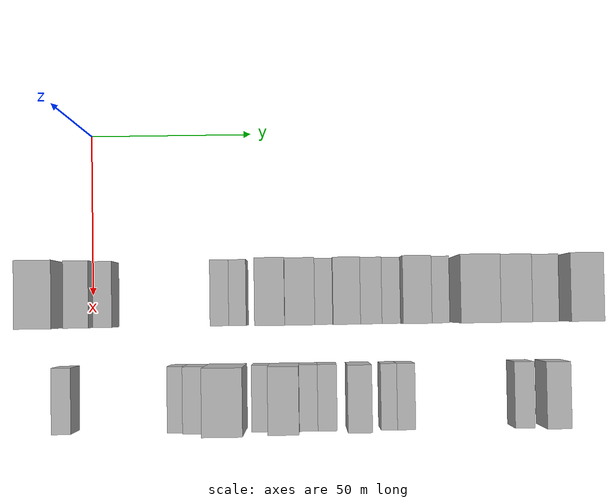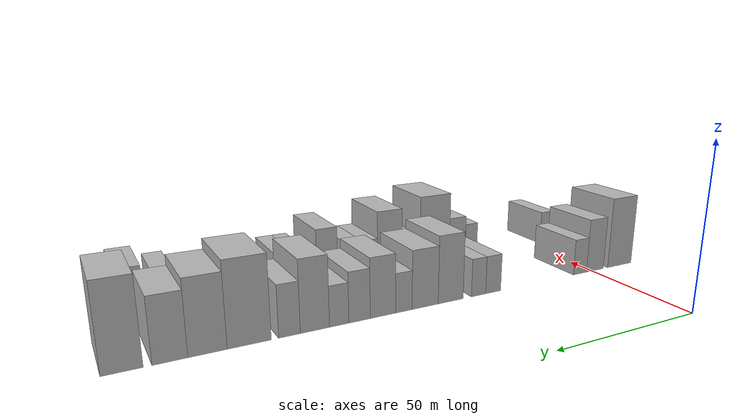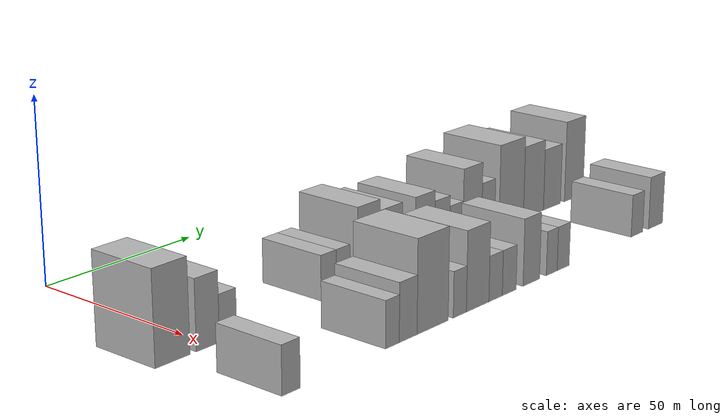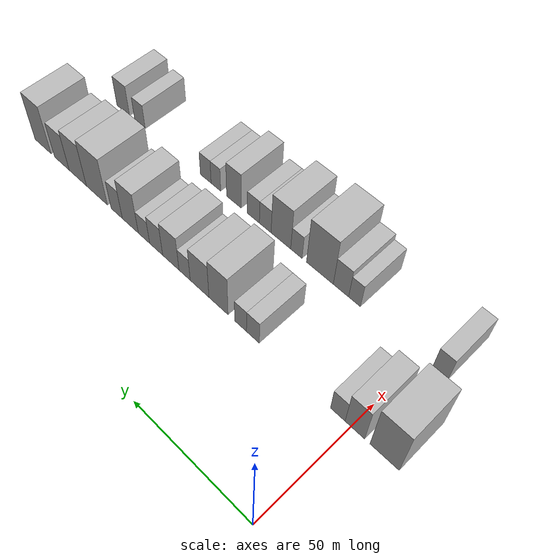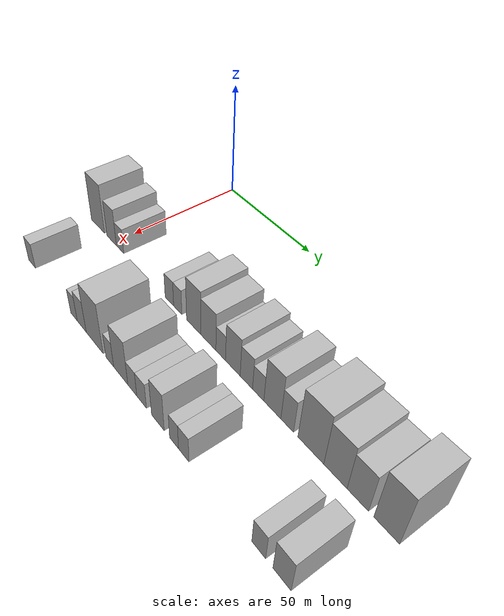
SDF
<sdf version="1.6">
 <world name="default">
  <model name="building_32">
   <static>1</static>
   <pose>50.0000 -12.5680 0 0.000000 0.000000 0.000000</pose>
   <link name="link">
    <pose>0 0 12.00 0 0 0</pose>
    <collision name="collision"><geometry><box><size>20.0000 10.8629 24.0000</size></box></geometry></collision>
    <visual name="visual">
     <cast_shadows>0</cast_shadows>
     <geometry><box><size>20.0000 10.8629 24.0000</size></box></geometry>
     <material>
      <script>
       <uri>model://HANNAS_wall/materials/scripts</uri>
       <uri>model://HANNAS_wall/materials/textures</uri>
       <name>vrc/HANNAS_wall</name>
      </script>
     </material>
    </visual>
   </link>
  </model>
  <model name="building_33">
   <static>1</static>
   <pose>50.0000 -1.3900 0 0.000000 0.000000 0.000000</pose>
   <link name="link">
    <pose>0 0 9.00 0 0 0</pose>
    <collision name="collision"><geometry><box><size>20.0000 7.4931 18.0000</size></box></geometry></collision>
    <visual name="visual">
     <cast_shadows>0</cast_shadows>
     <geometry><box><size>20.0000 7.4931 18.0000</size></box></geometry>
     <material>
      <script>
       <uri>model://HANNAS_wall/materials/scripts</uri>
       <uri>model://HANNAS_wall/materials/textures</uri>
       <name>vrc/HANNAS_wall</name>
      </script>
     </material>
    </visual>
   </link>
  </model>
  <model name="building_34">
   <static>1</static>
   <pose>50.0000 5.2241 0 0.000000 0.000000 0.000000</pose>
   <link name="link">
    <pose>0 0 6.00 0 0 0</pose>
    <collision name="collision"><geometry><box><size>20.0000 5.7352 12.0000</size></box></geometry></collision>
    <visual name="visual">
     <cast_shadows>0</cast_shadows>
     <geometry><box><size>20.0000 5.7352 12.0000</size></box></geometry>
     <material>
      <script>
       <uri>model://HANNAS_wall/materials/scripts</uri>
       <uri>model://HANNAS_wall/materials/textures</uri>
       <name>vrc/HANNAS_wall</name>
      </script>
     </material>
    </visual>
   </link>
  </model>
  <model name="building_35">
   <static>1</static>
   <pose>50.0000 40.5400 0 0.000000 0.000000 0.000000</pose>
   <link name="link">
    <pose>0 0 6.00 0 0 0</pose>
    <collision name="collision"><geometry><box><size>20.0000 5.6322 12.0000</size></box></geometry></collision>
    <visual name="visual">
     <cast_shadows>0</cast_shadows>
     <geometry><box><size>20.0000 5.6322 12.0000</size></box></geometry>
     <material>
      <script>
       <uri>model://HANNAS_wall/materials/scripts</uri>
       <uri>model://HANNAS_wall/materials/textures</uri>
       <name>vrc/HANNAS_wall</name>
      </script>
     </material>
    </visual>
   </link>
  </model>
  <model name="building_36">
   <static>1</static>
   <pose>50.0000 45.9921 0 0.000000 0.000000 0.000000</pose>
   <link name="link">
    <pose>0 0 6.00 0 0 0</pose>
    <collision name="collision"><geometry><box><size>20.0000 5.2721 12.0000</size></box></geometry></collision>
    <visual name="visual">
     <cast_shadows>0</cast_shadows>
     <geometry><box><size>20.0000 5.2721 12.0000</size></box></geometry>
     <material>
      <script>
       <uri>model://HANNAS_wall/materials/scripts</uri>
       <uri>model://HANNAS_wall/materials/textures</uri>
       <name>vrc/HANNAS_wall</name>
      </script>
     </material>
    </visual>
   </link>
  </model>
  <model name="building_37">
   <static>1</static>
   <pose>50.0000 56.0227 0 0.000000 0.000000 0.000000</pose>
   <link name="link">
    <pose>0 0 10.50 0 0 0</pose>
    <collision name="collision"><geometry><box><size>20.0000 8.7891 21.0000</size></box></geometry></collision>
    <visual name="visual">
     <cast_shadows>0</cast_shadows>
     <geometry><box><size>20.0000 8.7891 21.0000</size></box></geometry>
     <material>
      <script>
       <uri>model://HANNAS_wall/materials/scripts</uri>
       <uri>model://HANNAS_wall/materials/textures</uri>
       <name>vrc/HANNAS_wall</name>
      </script>
     </material>
    </visual>
   </link>
  </model>
  <model name="building_38">
   <static>1</static>
   <pose>50.0000 64.8491 0 0.000000 0.000000 0.000000</pose>
   <link name="link">
    <pose>0 0 9.00 0 0 0</pose>
    <collision name="collision"><geometry><box><size>20.0000 8.8636 18.0000</size></box></geometry></collision>
    <visual name="visual">
     <cast_shadows>0</cast_shadows>
     <geometry><box><size>20.0000 8.8636 18.0000</size></box></geometry>
     <material>
      <script>
       <uri>model://HANNAS_wall/materials/scripts</uri>
       <uri>model://HANNAS_wall/materials/textures</uri>
       <name>vrc/HANNAS_wall</name>
      </script>
     </material>
    </visual>
   </link>
  </model>
  <model name="building_39">
   <static>1</static>
   <pose>50.0000 71.9994 0 0.000000 0.000000 0.000000</pose>
   <link name="link">
    <pose>0 0 6.00 0 0 0</pose>
    <collision name="collision"><geometry><box><size>20.0000 5.4370 12.0000</size></box></geometry></collision>
    <visual name="visual">
     <cast_shadows>0</cast_shadows>
     <geometry><box><size>20.0000 5.4370 12.0000</size></box></geometry>
     <material>
      <script>
       <uri>model://HANNAS_wall/materials/scripts</uri>
       <uri>model://HANNAS_wall/materials/textures</uri>
       <name>vrc/HANNAS_wall</name>
      </script>
     </material>
    </visual>
   </link>
  </model>
  <model name="building_40">
   <static>1</static>
   <pose>50.0000 78.7575 0 0.000000 0.000000 0.000000</pose>
   <link name="link">
    <pose>0 0 9.00 0 0 0</pose>
    <collision name="collision"><geometry><box><size>20.0000 8.0791 18.0000</size></box></geometry></collision>
    <visual name="visual">
     <cast_shadows>0</cast_shadows>
     <geometry><box><size>20.0000 8.0791 18.0000</size></box></geometry>
     <material>
      <script>
       <uri>model://HANNAS_wall/materials/scripts</uri>
       <uri>model://HANNAS_wall/materials/textures</uri>
       <name>vrc/HANNAS_wall</name>
      </script>
     </material>
    </visual>
   </link>
  </model>
  <model name="building_41">
   <static>1</static>
   <pose>50.0000 86.0763 0 0.000000 0.000000 0.000000</pose>
   <link name="link">
    <pose>0 0 7.50 0 0 0</pose>
    <collision name="collision"><geometry><box><size>20.0000 6.5585 15.0000</size></box></geometry></collision>
    <visual name="visual">
     <cast_shadows>0</cast_shadows>
     <geometry><box><size>20.0000 6.5585 15.0000</size></box></geometry>
     <material>
      <script>
       <uri>model://HANNAS_wall/materials/scripts</uri>
       <uri>model://HANNAS_wall/materials/textures</uri>
       <name>vrc/HANNAS_wall</name>
      </script>
     </material>
    </visual>
   </link>
  </model>
  <model name="building_42">
   <static>1</static>
   <pose>50.0000 92.2538 0 0.000000 0.000000 0.000000</pose>
   <link name="link">
    <pose>0 0 6.00 0 0 0</pose>
    <collision name="collision"><geometry><box><size>20.0000 5.7967 12.0000</size></box></geometry></collision>
    <visual name="visual">
     <cast_shadows>0</cast_shadows>
     <geometry><box><size>20.0000 5.7967 12.0000</size></box></geometry>
     <material>
      <script>
       <uri>model://HANNAS_wall/materials/scripts</uri>
       <uri>model://HANNAS_wall/materials/textures</uri>
       <name>vrc/HANNAS_wall</name>
      </script>
     </material>
    </visual>
   </link>
  </model>
  <model name="building_43">
   <static>1</static>
   <pose>50.0000 99.3555 0 0.000000 0.000000 0.000000</pose>
   <link name="link">
    <pose>0 0 10.50 0 0 0</pose>
    <collision name="collision"><geometry><box><size>20.0000 8.4067 21.0000</size></box></geometry></collision>
    <visual name="visual">
     <cast_shadows>0</cast_shadows>
     <geometry><box><size>20.0000 8.4067 21.0000</size></box></geometry>
     <material>
      <script>
       <uri>model://HANNAS_wall/materials/scripts</uri>
       <uri>model://HANNAS_wall/materials/textures</uri>
       <name>vrc/HANNAS_wall</name>
      </script>
     </material>
    </visual>
   </link>
  </model>
  <model name="building_44">
   <static>1</static>
   <pose>50.0000 106.5774 0 0.000000 0.000000 0.000000</pose>
   <link name="link">
    <pose>0 0 7.50 0 0 0</pose>
    <collision name="collision"><geometry><box><size>20.0000 6.0372 15.0000</size></box></geometry></collision>
    <visual name="visual">
     <cast_shadows>0</cast_shadows>
     <geometry><box><size>20.0000 6.0372 15.0000</size></box></geometry>
     <material>
      <script>
       <uri>model://HANNAS_wall/materials/scripts</uri>
       <uri>model://HANNAS_wall/materials/textures</uri>
       <name>vrc/HANNAS_wall</name>
      </script>
     </material>
    </visual>
   </link>
  </model>
  <model name="building_45">
   <static>1</static>
   <pose>50.0000 117.4008 0 0.000000 0.000000 0.000000</pose>
   <link name="link">
    <pose>0 0 12.00 0 0 0</pose>
    <collision name="collision"><geometry><box><size>20.0000 11.6096 24.0000</size></box></geometry></collision>
    <visual name="visual">
     <cast_shadows>0</cast_shadows>
     <geometry><box><size>20.0000 11.6096 24.0000</size></box></geometry>
     <material>
      <script>
       <uri>model://HANNAS_wall/materials/scripts</uri>
       <uri>model://HANNAS_wall/materials/textures</uri>
       <name>vrc/HANNAS_wall</name>
      </script>
     </material>
    </visual>
   </link>
  </model>
  <model name="building_46">
   <static>1</static>
   <pose>50.0000 128.1020 0 0.000000 0.000000 0.000000</pose>
   <link name="link">
    <pose>0 0 10.50 0 0 0</pose>
    <collision name="collision"><geometry><box><size>20.0000 9.7929 21.0000</size></box></geometry></collision>
    <visual name="visual">
     <cast_shadows>0</cast_shadows>
     <geometry><box><size>20.0000 9.7929 21.0000</size></box></geometry>
     <material>
      <script>
       <uri>model://HANNAS_wall/materials/scripts</uri>
       <uri>model://HANNAS_wall/materials/textures</uri>
       <name>vrc/HANNAS_wall</name>
      </script>
     </material>
    </visual>
   </link>
  </model>
  <model name="building_47">
   <static>1</static>
   <pose>50.0000 137.2708 0 0.000000 0.000000 0.000000</pose>
   <link name="link">
    <pose>0 0 9.00 0 0 0</pose>
    <collision name="collision"><geometry><box><size>20.0000 8.5446 18.0000</size></box></geometry></collision>
    <visual name="visual">
     <cast_shadows>0</cast_shadows>
     <geometry><box><size>20.0000 8.5446 18.0000</size></box></geometry>
     <material>
      <script>
       <uri>model://HANNAS_wall/materials/scripts</uri>
       <uri>model://HANNAS_wall/materials/textures</uri>
       <name>vrc/HANNAS_wall</name>
      </script>
     </material>
    </visual>
   </link>
  </model>
  <model name="building_48">
   <static>1</static>
   <pose>50.0000 148.3784 0 0.000000 0.000000 0.000000</pose>
   <link name="link">
    <pose>0 0 12.00 0 0 0</pose>
    <collision name="collision"><geometry><box><size>20.0000 9.6707 24.0000</size></box></geometry></collision>
    <visual name="visual">
     <cast_shadows>0</cast_shadows>
     <geometry><box><size>20.0000 9.6707 24.0000</size></box></geometry>
     <material>
      <script>
       <uri>model://HANNAS_wall/materials/scripts</uri>
       <uri>model://HANNAS_wall/materials/textures</uri>
       <name>vrc/HANNAS_wall</name>
      </script>
     </material>
    </visual>
   </link>
  </model>
  <model name="building_92">
   <static>1</static>
   <pose>82.0000 -7.4349 0 0.000000 0.000000 0.000000</pose>
   <link name="link">
    <pose>0 0 6.00 0 0 0</pose>
    <collision name="collision"><geometry><box><size>20.0000 5.8910 12.0000</size></box></geometry></collision>
    <visual name="visual">
     <cast_shadows>0</cast_shadows>
     <geometry><box><size>20.0000 5.8910 12.0000</size></box></geometry>
     <material>
      <script>
       <uri>model://HANNAS_wall/materials/scripts</uri>
       <uri>model://HANNAS_wall/materials/textures</uri>
       <name>vrc/HANNAS_wall</name>
      </script>
     </material>
    </visual>
   </link>
  </model>
  <model name="building_93">
   <static>1</static>
   <pose>82.0000 27.0017 0 0.000000 0.000000 0.000000</pose>
   <link name="link">
    <pose>0 0 6.00 0 0 0</pose>
    <collision name="collision"><geometry><box><size>20.0000 4.9941 12.0000</size></box></geometry></collision>
    <visual name="visual">
     <cast_shadows>0</cast_shadows>
     <geometry><box><size>20.0000 4.9941 12.0000</size></box></geometry>
     <material>
      <script>
       <uri>model://HANNAS_wall/materials/scripts</uri>
       <uri>model://HANNAS_wall/materials/textures</uri>
       <name>vrc/HANNAS_wall</name>
      </script>
     </material>
    </visual>
   </link>
  </model>
  <model name="building_94">
   <static>1</static>
   <pose>82.0000 32.7926 0 0.000000 0.000000 0.000000</pose>
   <link name="link">
    <pose>0 0 7.50 0 0 0</pose>
    <collision name="collision"><geometry><box><size>20.0000 6.5878 15.0000</size></box></geometry></collision>
    <visual name="visual">
     <cast_shadows>0</cast_shadows>
     <geometry><box><size>20.0000 6.5878 15.0000</size></box></geometry>
     <material>
      <script>
       <uri>model://HANNAS_wall/materials/scripts</uri>
       <uri>model://HANNAS_wall/materials/textures</uri>
       <name>vrc/HANNAS_wall</name>
      </script>
     </material>
    </visual>
   </link>
  </model>
  <model name="building_95">
   <static>1</static>
   <pose>82.0000 42.0146 0 0.000000 0.000000 0.000000</pose>
   <link name="link">
    <pose>0 0 12.00 0 0 0</pose>
    <collision name="collision"><geometry><box><size>20.0000 11.8562 24.0000</size></box></geometry></collision>
    <visual name="visual">
     <cast_shadows>0</cast_shadows>
     <geometry><box><size>20.0000 11.8562 24.0000</size></box></geometry>
     <material>
      <script>
       <uri>model://HANNAS_wall/materials/scripts</uri>
       <uri>model://HANNAS_wall/materials/textures</uri>
       <name>vrc/HANNAS_wall</name>
      </script>
     </material>
    </visual>
   </link>
  </model>
  <model name="building_96">
   <static>1</static>
   <pose>82.0000 52.5281 0 0.000000 0.000000 0.000000</pose>
   <link name="link">
    <pose>0 0 6.00 0 0 0</pose>
    <collision name="collision"><geometry><box><size>20.0000 5.1706 12.0000</size></box></geometry></collision>
    <visual name="visual">
     <cast_shadows>0</cast_shadows>
     <geometry><box><size>20.0000 5.1706 12.0000</size></box></geometry>
     <material>
      <script>
       <uri>model://HANNAS_wall/materials/scripts</uri>
       <uri>model://HANNAS_wall/materials/textures</uri>
       <name>vrc/HANNAS_wall</name>
      </script>
     </material>
    </visual>
   </link>
  </model>
  <model name="building_97">
   <static>1</static>
   <pose>82.0000 59.6885 0 0.000000 0.000000 0.000000</pose>
   <link name="link">
    <pose>0 0 10.50 0 0 0</pose>
    <collision name="collision"><geometry><box><size>20.0000 9.1502 21.0000</size></box></geometry></collision>
    <visual name="visual">
     <cast_shadows>0</cast_shadows>
     <geometry><box><size>20.0000 9.1502 21.0000</size></box></geometry>
     <material>
      <script>
       <uri>model://HANNAS_wall/materials/scripts</uri>
       <uri>model://HANNAS_wall/materials/textures</uri>
       <name>vrc/HANNAS_wall</name>
      </script>
     </material>
    </visual>
   </link>
  </model>
  <model name="building_98">
   <static>1</static>
   <pose>82.0000 67.0391 0 0.000000 0.000000 0.000000</pose>
   <link name="link">
    <pose>0 0 6.00 0 0 0</pose>
    <collision name="collision"><geometry><box><size>20.0000 5.5510 12.0000</size></box></geometry></collision>
    <visual name="visual">
     <cast_shadows>0</cast_shadows>
     <geometry><box><size>20.0000 5.5510 12.0000</size></box></geometry>
     <material>
      <script>
       <uri>model://HANNAS_wall/materials/scripts</uri>
       <uri>model://HANNAS_wall/materials/textures</uri>
       <name>vrc/HANNAS_wall</name>
      </script>
     </material>
    </visual>
   </link>
  </model>
  <model name="building_99">
   <static>1</static>
   <pose>82.0000 72.7305 0 0.000000 0.000000 0.000000</pose>
   <link name="link">
    <pose>0 0 6.00 0 0 0</pose>
    <collision name="collision"><geometry><box><size>20.0000 5.8318 12.0000</size></box></geometry></collision>
    <visual name="visual">
     <cast_shadows>0</cast_shadows>
     <geometry><box><size>20.0000 5.8318 12.0000</size></box></geometry>
     <material>
      <script>
       <uri>model://HANNAS_wall/materials/scripts</uri>
       <uri>model://HANNAS_wall/materials/textures</uri>
       <name>vrc/HANNAS_wall</name>
      </script>
     </material>
    </visual>
   </link>
  </model>
  <model name="building_100">
   <static>1</static>
   <pose>82.0000 82.2524 0 0.000000 0.000000 0.000000</pose>
   <link name="link">
    <pose>0 0 9.00 0 0 0</pose>
    <collision name="collision"><geometry><box><size>20.0000 7.2120 18.0000</size></box></geometry></collision>
    <visual name="visual">
     <cast_shadows>0</cast_shadows>
     <geometry><box><size>20.0000 7.2120 18.0000</size></box></geometry>
     <material>
      <script>
       <uri>model://HANNAS_wall/materials/scripts</uri>
       <uri>model://HANNAS_wall/materials/textures</uri>
       <name>vrc/HANNAS_wall</name>
      </script>
     </material>
    </visual>
   </link>
  </model>
  <model name="building_101">
   <static>1</static>
   <pose>82.0000 91.2941 0 0.000000 0.000000 0.000000</pose>
   <link name="link">
    <pose>0 0 6.00 0 0 0</pose>
    <collision name="collision"><geometry><box><size>20.0000 4.8713 12.0000</size></box></geometry></collision>
    <visual name="visual">
     <cast_shadows>0</cast_shadows>
     <geometry><box><size>20.0000 4.8713 12.0000</size></box></geometry>
     <material>
      <script>
       <uri>model://HANNAS_wall/materials/scripts</uri>
       <uri>model://HANNAS_wall/materials/textures</uri>
       <name>vrc/HANNAS_wall</name>
      </script>
     </material>
    </visual>
   </link>
  </model>
  <model name="building_102">
   <static>1</static>
   <pose>82.0000 96.4805 0 0.000000 0.000000 0.000000</pose>
   <link name="link">
    <pose>0 0 6.00 0 0 0</pose>
    <collision name="collision"><geometry><box><size>20.0000 5.5016 12.0000</size></box></geometry></collision>
    <visual name="visual">
     <cast_shadows>0</cast_shadows>
     <geometry><box><size>20.0000 5.5016 12.0000</size></box></geometry>
     <material>
      <script>
       <uri>model://HANNAS_wall/materials/scripts</uri>
       <uri>model://HANNAS_wall/materials/textures</uri>
       <name>vrc/HANNAS_wall</name>
      </script>
     </material>
    </visual>
   </link>
  </model>
  <model name="building_103">
   <static>1</static>
   <pose>82.0000 132.1444 0 0.000000 0.000000 0.000000</pose>
   <link name="link">
    <pose>0 0 6.00 0 0 0</pose>
    <collision name="collision"><geometry><box><size>20.0000 5.9420 12.0000</size></box></geometry></collision>
    <visual name="visual">
     <cast_shadows>0</cast_shadows>
     <geometry><box><size>20.0000 5.9420 12.0000</size></box></geometry>
     <material>
      <script>
       <uri>model://HANNAS_wall/materials/scripts</uri>
       <uri>model://HANNAS_wall/materials/textures</uri>
       <name>vrc/HANNAS_wall</name>
      </script>
     </material>
    </visual>
   </link>
  </model>
  <model name="building_104">
   <static>1</static>
   <pose>82.0000 141.7778 0 0.000000 0.000000 0.000000</pose>
   <link name="link">
    <pose>0 0 7.50 0 0 0</pose>
    <collision name="collision"><geometry><box><size>20.0000 7.3248 15.0000</size></box></geometry></collision>
    <visual name="visual">
     <cast_shadows>0</cast_shadows>
     <geometry><box><size>20.0000 7.3248 15.0000</size></box></geometry>
     <material>
      <script>
       <uri>model://HANNAS_wall/materials/scripts</uri>
       <uri>model://HANNAS_wall/materials/textures</uri>
       <name>vrc/HANNAS_wall</name>
      </script>
     </material>
    </visual>
   </link>
  </model>
 </world>
</sdf>
